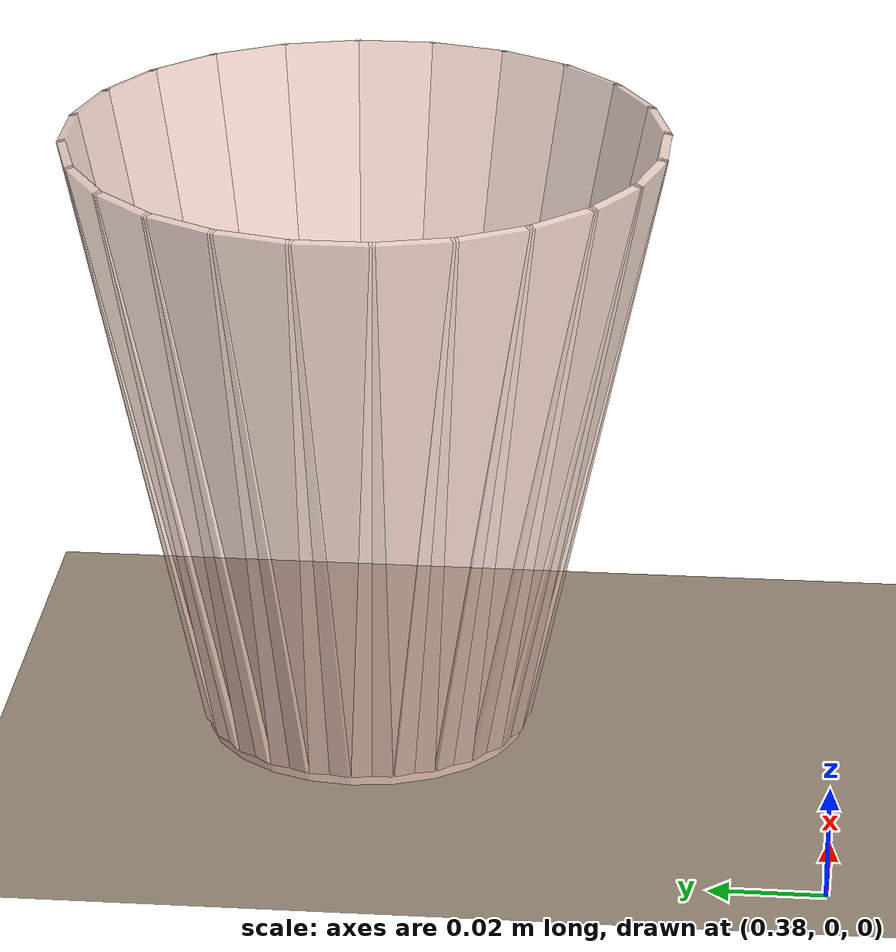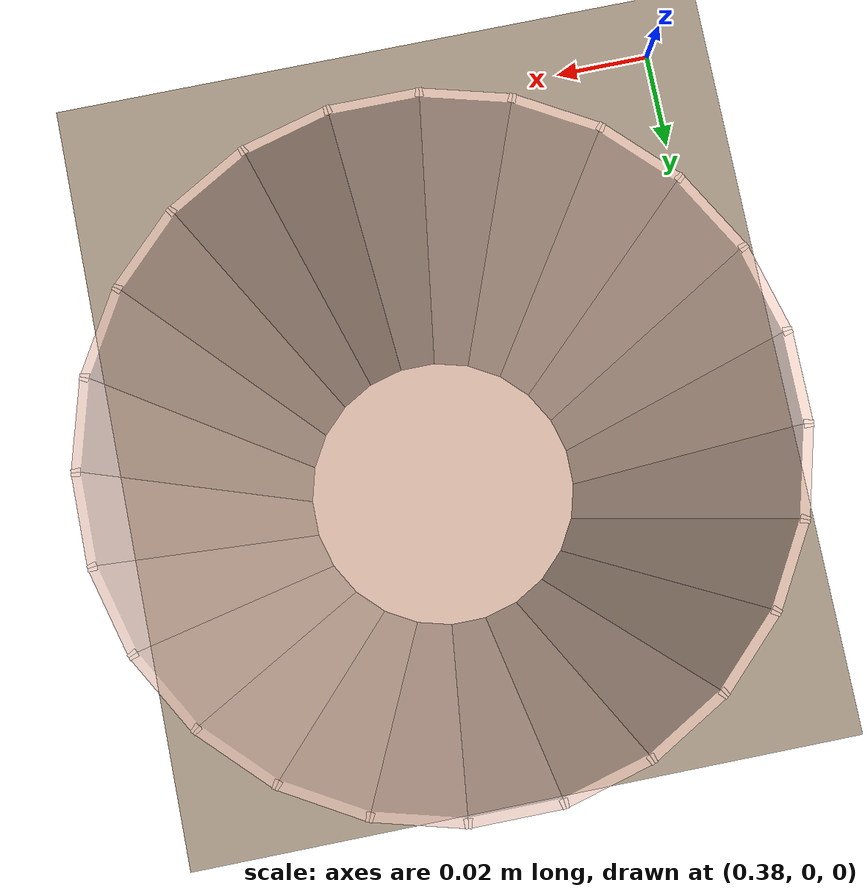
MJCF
<!-- GENERATED by scripts/build_yam_assets.py from teleop_sim/envs/yam_assets.py.
     Do not edit by hand: change the generator and re-run it. -->
<mujoco model="cup_table">
  <compiler angle="radian"/>
  <include file="cup.xml"/>

  <option timestep="0.0016666666666666668" integrator="implicitfast" cone="elliptic" impratio="10"/>

  <visual>
    <global offwidth="1280" offheight="960"/>
    <quality shadowsize="4096"/>
    <headlight ambient="0.40 0.40 0.40" diffuse="0.30 0.30 0.30" specular="0 0 0"/>
  </visual>

  <asset>
    <texture name="skybox" type="skybox" builtin="gradient"
             rgb1="0.36 0.43 0.52" rgb2="0.10 0.12 0.16" width="256" height="1536"/>
    <texture name="tabletop_tex" type="2d" builtin="checker"
             rgb1="0.66 0.60 0.52" rgb2="0.60 0.54 0.47" width="300" height="300"/>
    <material name="tabletop" texture="tabletop_tex" texrepeat="8 8" reflectance="0"
              specular="0.05" shininess="0.1"/>
  </asset>

  <worldbody>
    <!-- Soft and mostly diffuse: specular hotspots on the table are pixels a
         policy would learn to depend on. -->
    <light name="key"  pos="0.6 0.4 1.4"  dir="-0.4 -0.3 -1" diffuse="0.45 0.45 0.45"
           specular="0.05 0.05 0.05" castshadow="true"/>
    <light name="fill" pos="-0.3 -0.5 0.9" dir="0.3 0.5 -0.9" diffuse="0.25 0.25 0.25"
           specular="0 0 0" castshadow="false"/>
    <light name="overhead" pos="0 0 1" dir="0.35 0 -0.94" diffuse="0.7 0.7 0.7"
           specular="0.3 0.3 0.3" castshadow="true"/>

    <!-- The arm is attached at the origin and welded to the world, so it sits
         on the tabletop without colliding with it. -->
    <geom name="tabletop" type="plane" size="0.8 0.8 0.02" material="tabletop"
          friction="1.0 0.01 0.001"/>

    <!-- Overhead workspace view, centred on the glasses with the gripper's
         approach path in frame. Named to match the 'top' camera in the public
         YAM datasets (ABC-130k). -->
    <camera name="top" pos="0.22 0 0.72" xyaxes="0.000000 -1.000000 0.000000 0.965755 0.000000 0.259457" fovy="55"/>
  </worldbody>
</mujoco>

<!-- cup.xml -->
<!-- GENERATED by scripts/build_yam_assets.py from teleop_sim/envs/yam_assets.py.
     Do not edit by hand: change the generator and re-run it. -->
<mujoco model="cups">
  <worldbody>
    <body name="cup" pos="0.442 0.084 0">
      <freejoint name="cup_free"/>
      <geom name="cup_base" type="cylinder" size="0.0285 0.001" pos="0 0 0.001" density="900" rgba="0.95 0.8 0.74 0.7" friction="1 0.01 0.001" solimp="0.95 0.99 0.001" solref="0.004 1"/>
      <geom name="cup_wall00" type="box" size="0.00075 0.007358 0.055317" pos="0.039750 0.000000 0.056" quat="0.994029 -0.000000 0.109117 0.000000" density="900" rgba="0.95 0.8 0.74 0.7" friction="1 0.01 0.001" solimp="0.95 0.99 0.001" solref="0.004 1"/>
      <geom name="cup_wall01" type="box" size="0.00075 0.007358 0.055317" pos="0.038396 0.010288 0.056" quat="0.985525 -0.014243 0.108183 0.129747" density="900" rgba="0.95 0.8 0.74 0.7" friction="1 0.01 0.001" solimp="0.95 0.99 0.001" solref="0.004 1"/>
      <geom name="cup_wall02" type="box" size="0.00075 0.007358 0.055317" pos="0.034425 0.019875 0.056" quat="0.960158 -0.028241 0.105399 0.257274" density="900" rgba="0.95 0.8 0.74 0.7" friction="1 0.01 0.001" solimp="0.95 0.99 0.001" solref="0.004 1"/>
      <geom name="cup_wall03" type="box" size="0.00075 0.007358 0.055317" pos="0.028107 0.028107 0.056" quat="0.918363 -0.041757 0.100811 0.380398" density="900" rgba="0.95 0.8 0.74 0.7" friction="1 0.01 0.001" solimp="0.95 0.99 0.001" solref="0.004 1"/>
      <geom name="cup_wall04" type="box" size="0.00075 0.007358 0.055317" pos="0.019875 0.034425 0.056" quat="0.860854 -0.054558 0.094498 0.497014" density="900" rgba="0.95 0.8 0.74 0.7" friction="1 0.01 0.001" solimp="0.95 0.99 0.001" solref="0.004 1"/>
      <geom name="cup_wall05" type="box" size="0.00075 0.007358 0.055317" pos="0.010288 0.038396 0.056" quat="0.788616 -0.066426 0.086568 0.605126" density="900" rgba="0.95 0.8 0.74 0.7" friction="1 0.01 0.001" solimp="0.95 0.99 0.001" solref="0.004 1"/>
      <geom name="cup_wall06" type="box" size="0.00075 0.007358 0.055317" pos="0.000000 0.039750 0.056" quat="0.702885 -0.077157 0.077157 0.702885" density="900" rgba="0.95 0.8 0.74 0.7" friction="1 0.01 0.001" solimp="0.95 0.99 0.001" solref="0.004 1"/>
      <geom name="cup_wall07" type="box" size="0.00075 0.007358 0.055317" pos="-0.010288 0.038396 0.056" quat="0.605126 -0.086568 0.066426 0.788616" density="900" rgba="0.95 0.8 0.74 0.7" friction="1 0.01 0.001" solimp="0.95 0.99 0.001" solref="0.004 1"/>
      <geom name="cup_wall08" type="box" size="0.00075 0.007358 0.055317" pos="-0.019875 0.034425 0.056" quat="0.497014 -0.094498 0.054558 0.860854" density="900" rgba="0.95 0.8 0.74 0.7" friction="1 0.01 0.001" solimp="0.95 0.99 0.001" solref="0.004 1"/>
      <geom name="cup_wall09" type="box" size="0.00075 0.007358 0.055317" pos="-0.028107 0.028107 0.056" quat="0.380398 -0.100811 0.041757 0.918363" density="900" rgba="0.95 0.8 0.74 0.7" friction="1 0.01 0.001" solimp="0.95 0.99 0.001" solref="0.004 1"/>
      <geom name="cup_wall10" type="box" size="0.00075 0.007358 0.055317" pos="-0.034425 0.019875 0.056" quat="0.257274 -0.105399 0.028241 0.960158" density="900" rgba="0.95 0.8 0.74 0.7" friction="1 0.01 0.001" solimp="0.95 0.99 0.001" solref="0.004 1"/>
      <geom name="cup_wall11" type="box" size="0.00075 0.007358 0.055317" pos="-0.038396 0.010288 0.056" quat="0.129747 -0.108183 0.014243 0.985525" density="900" rgba="0.95 0.8 0.74 0.7" friction="1 0.01 0.001" solimp="0.95 0.99 0.001" solref="0.004 1"/>
      <geom name="cup_wall12" type="box" size="0.00075 0.007358 0.055317" pos="-0.039750 0.000000 0.056" quat="0.000000 -0.109117 0.000000 0.994029" density="900" rgba="0.95 0.8 0.74 0.7" friction="1 0.01 0.001" solimp="0.95 0.99 0.001" solref="0.004 1"/>
      <geom name="cup_wall13" type="box" size="0.00075 0.007358 0.055317" pos="-0.038396 -0.010288 0.056" quat="-0.129747 -0.108183 -0.014243 0.985525" density="900" rgba="0.95 0.8 0.74 0.7" friction="1 0.01 0.001" solimp="0.95 0.99 0.001" solref="0.004 1"/>
      <geom name="cup_wall14" type="box" size="0.00075 0.007358 0.055317" pos="-0.034425 -0.019875 0.056" quat="-0.257274 -0.105399 -0.028241 0.960158" density="900" rgba="0.95 0.8 0.74 0.7" friction="1 0.01 0.001" solimp="0.95 0.99 0.001" solref="0.004 1"/>
      <geom name="cup_wall15" type="box" size="0.00075 0.007358 0.055317" pos="-0.028107 -0.028107 0.056" quat="-0.380398 -0.100811 -0.041757 0.918363" density="900" rgba="0.95 0.8 0.74 0.7" friction="1 0.01 0.001" solimp="0.95 0.99 0.001" solref="0.004 1"/>
      <geom name="cup_wall16" type="box" size="0.00075 0.007358 0.055317" pos="-0.019875 -0.034425 0.056" quat="-0.497014 -0.094498 -0.054558 0.860854" density="900" rgba="0.95 0.8 0.74 0.7" friction="1 0.01 0.001" solimp="0.95 0.99 0.001" solref="0.004 1"/>
      <geom name="cup_wall17" type="box" size="0.00075 0.007358 0.055317" pos="-0.010288 -0.038396 0.056" quat="-0.605126 -0.086568 -0.066426 0.788616" density="900" rgba="0.95 0.8 0.74 0.7" friction="1 0.01 0.001" solimp="0.95 0.99 0.001" solref="0.004 1"/>
      <geom name="cup_wall18" type="box" size="0.00075 0.007358 0.055317" pos="-0.000000 -0.039750 0.056" quat="-0.702885 -0.077157 -0.077157 0.702885" density="900" rgba="0.95 0.8 0.74 0.7" friction="1 0.01 0.001" solimp="0.95 0.99 0.001" solref="0.004 1"/>
      <geom name="cup_wall19" type="box" size="0.00075 0.007358 0.055317" pos="0.010288 -0.038396 0.056" quat="-0.788616 -0.066426 -0.086568 0.605126" density="900" rgba="0.95 0.8 0.74 0.7" friction="1 0.01 0.001" solimp="0.95 0.99 0.001" solref="0.004 1"/>
      <geom name="cup_wall20" type="box" size="0.00075 0.007358 0.055317" pos="0.019875 -0.034425 0.056" quat="-0.860854 -0.054558 -0.094498 0.497014" density="900" rgba="0.95 0.8 0.74 0.7" friction="1 0.01 0.001" solimp="0.95 0.99 0.001" solref="0.004 1"/>
      <geom name="cup_wall21" type="box" size="0.00075 0.007358 0.055317" pos="0.028107 -0.028107 0.056" quat="-0.918363 -0.041757 -0.100811 0.380398" density="900" rgba="0.95 0.8 0.74 0.7" friction="1 0.01 0.001" solimp="0.95 0.99 0.001" solref="0.004 1"/>
      <geom name="cup_wall22" type="box" size="0.00075 0.007358 0.055317" pos="0.034425 -0.019875 0.056" quat="-0.960158 -0.028241 -0.105399 0.257274" density="900" rgba="0.95 0.8 0.74 0.7" friction="1 0.01 0.001" solimp="0.95 0.99 0.001" solref="0.004 1"/>
      <geom name="cup_wall23" type="box" size="0.00075 0.007358 0.055317" pos="0.038396 -0.010288 0.056" quat="-0.985525 -0.014243 -0.108183 0.129747" density="900" rgba="0.95 0.8 0.74 0.7" friction="1 0.01 0.001" solimp="0.95 0.99 0.001" solref="0.004 1"/>
    </body>
  </worldbody>
</mujoco>
